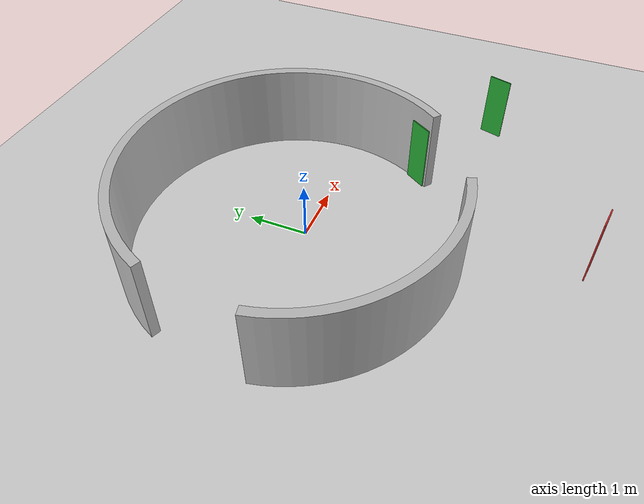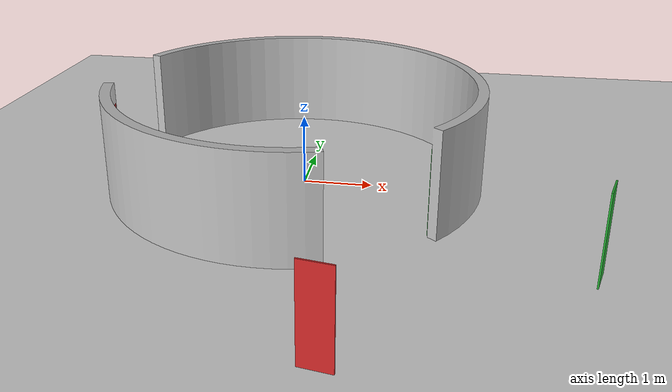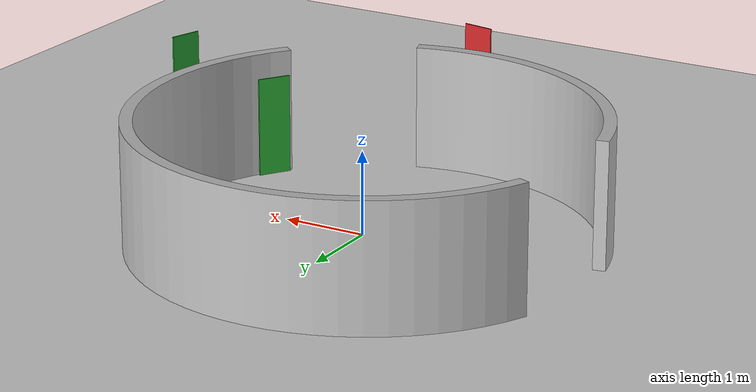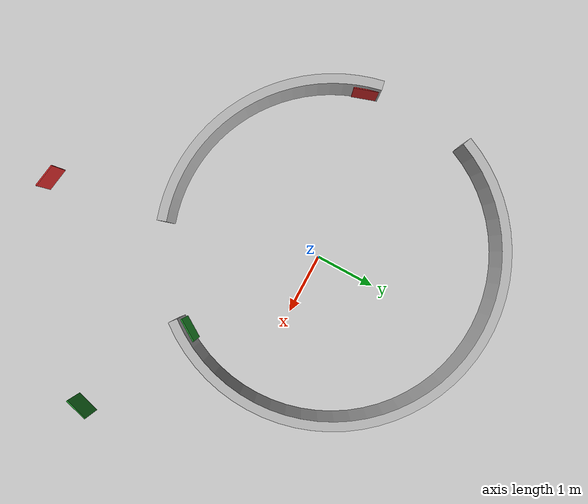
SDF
<sdf version="1.6">
 <world name="default">
  <light name="sun" type="directional">
   <pose>0 0 10 0 -0 0</pose>
   <diffuse>0.8 0.8 0.8 1</diffuse>
   <specular>0.2 0.2 0.2 1</specular>
   <attenuation>
    <range>1000</range>
    <constant>0.9</constant>
    <linear>0.01</linear>
    <quadratic>0.001</quadratic>
   </attenuation>
   <direction>-0.5 0.1 -0.9</direction>
  </light>
  <model name="ground_plane">
   <static>1</static>
   <link name="link">
    <collision name="collision">
     <geometry><plane><normal>0 0 1</normal><size>100 100</size></plane></geometry>
     <surface>
      <contact><collide_bitmask>65535</collide_bitmask></contact>
      <friction><ode><mu>100</mu><mu2>50</mu2></ode></friction>
     </surface>
    </collision>
    <visual name="visual">
     <cast_shadows>0</cast_shadows>
     <geometry><plane><normal>0 0 1</normal><size>100 100</size></plane></geometry>
     <material>
      <script><uri>file://media/materials/scripts/gazebo.material</uri><name>Gazebo/Grey</name></script>
     </material>
    </visual>
   </link>
  </model>
  <gravity>0 0 -9.8</gravity>
  <magnetic_field>6e-06 2.3e-05 -4.2e-05</magnetic_field>
  <atmosphere type="adiabatic"/>
  <physics name="default_physics" default="0" type="ode">
   <max_step_size>0.001</max_step_size>
   <real_time_factor>1</real_time_factor>
   <real_time_update_rate>1000</real_time_update_rate>
  </physics>
  <scene><ambient>0.4 0.4 0.4 1</ambient><background>0.7 0.7 0.7 1</background><shadows>1</shadows></scene>
  <audio><device>default</device></audio>
  <spherical_coordinates>
   <surface_model>EARTH_WGS84</surface_model>
   <latitude_deg>0</latitude_deg>
   <longitude_deg>0</longitude_deg>
   <elevation>0</elevation>
   <heading_deg>0</heading_deg>
  </spherical_coordinates>
  <model name="red_box">
   <static>1</static>
   <link name="box">
    <pose>0 0 0.6 0 -0 0</pose>
    <collision name="collision"><geometry><box><size>0.4 0.02 1.2</size></box></geometry></collision>
    <visual name="visual">
     <geometry><box><size>0.4 0.02 1.2</size></box></geometry>
     <material>
      <script>
       <uri>model://red_box/materials/scripts</uri>
       <uri>model://red_box/materials/textures</uri>
       <name>red_box</name>
      </script>
     </material>
    </visual>
   </link>
   <pose>-2.64952 -0.584819 -0 0 -0 1.88721</pose>
  </model>
  <model name="green_box">
   <static>1</static>
   <link name="box">
    <pose>0 0 0.6 0 -0 0</pose>
    <collision name="collision"><geometry><box><size>0.4 0.02 1.2</size></box></geometry></collision>
    <visual name="visual">
     <geometry><box><size>0.4 0.02 1.2</size></box></geometry>
     <material>
      <script>
       <uri>model://green_box/materials/scripts</uri>
       <uri>model://green_box/materials/textures</uri>
       <name>green_box</name>
      </script>
     </material>
    </visual>
   </link>
   <pose>1.9774 -1.27447 0 0 -0 0.99477</pose>
  </model>
  <model name="green_box_0">
   <static>1</static>
   <link name="box">
    <pose>0 0 0.6 0 -0 0</pose>
    <collision name="collision"><geometry><box><size>0.4 0.02 1.2</size></box></geometry></collision>
    <visual name="visual">
     <geometry><box><size>0.4 0.02 1.2</size></box></geometry>
     <material>
      <script>
       <uri>model://green_box/materials/scripts</uri>
       <uri>model://green_box/materials/textures</uri>
       <name>green_box</name>
      </script>
     </material>
    </visual>
   </link>
   <pose>3.88341 -2.21804 0 0 -0 1.27851</pose>
  </model>
  <model name="red_box_0">
   <static>1</static>
   <link name="box">
    <pose>0 0 0.6 0 -0 0</pose>
    <collision name="collision"><geometry><box><size>0.4 0.02 1.2</size></box></geometry></collision>
    <visual name="visual">
     <geometry><box><size>0.4 0.02 1.2</size></box></geometry>
     <material>
      <script>
       <uri>model://red_box/materials/scripts</uri>
       <uri>model://red_box/materials/textures</uri>
       <name>red_box</name>
      </script>
     </material>
    </visual>
   </link>
   <pose>0.901997 -4.38162 0 0 0 -0.168439</pose>
  </model>
  <model name="round_C">
   <static>1</static>
   <link name="link">
    <collision name="collision">
     <geometry><mesh><uri>model://round_C/meshes/round_C.dae</uri></mesh></geometry>
    </collision>
    <visual name="visual"><geometry><mesh><uri>model://round_C/meshes/round_C.dae</uri></mesh></geometry></visual>
   </link>
   <pose>0.002406 -0.010651 0 0 -0 0.500062</pose>
  </model>
 </world>
</sdf>
